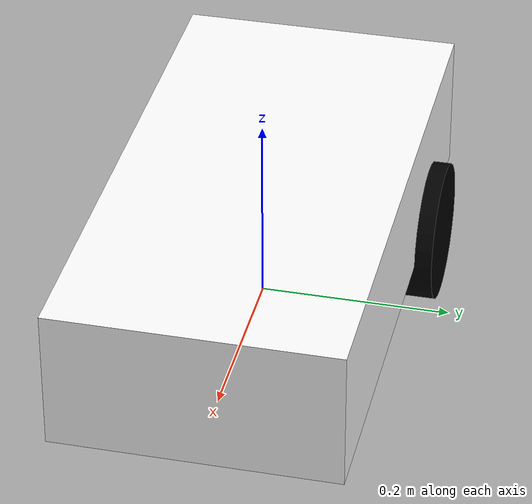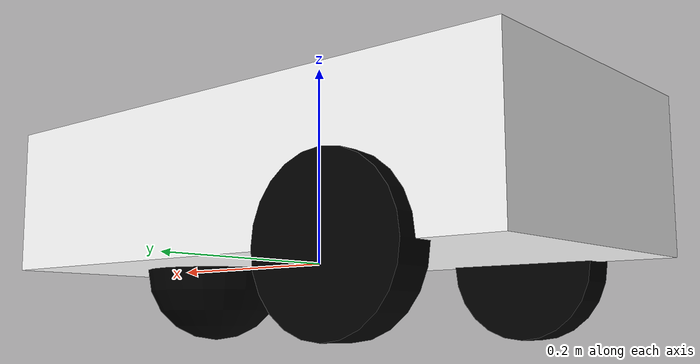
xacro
<?xml version="1.0"?>
<robot xmlns:xacro="http://www.ros.org/wiki/xacro">

    <xacro:include filename="color.urdf.xacro" />
    <xacro:include filename="inertia.urdf.xacro" />

    <link name="base_link">
    </link>

    <joint name="base_footprint_joint" type="fixed">
        <parent link="base_link"/>
        <child link="base_footprint"/>
        <origin xyz="0 0 0" rpy="0 0 0"/>
    </joint>

    <link name="base_footprint">
    </link>

    <joint name="chassis_joint" type="fixed">
        <parent link="base_link" />
        <child link="chassis_link" />
        <origin xyz="-0.3 0 0" rpy="0 0 0" />
    </joint>

    <link name="chassis_link">
        <visual>
            <origin xyz="0.3 0 0.075" rpy="0 0 0" />
            <geometry>
                <box size="0.6 0.3 0.15" />
            </geometry>
            <material name="white" />
        </visual>
        <collision>
            <origin xyz="0.3 0 0.075" rpy="0 0 0" />
            <geometry>
                <box size="0.6 0.3 0.15" />
            </geometry>
        </collision>
        <xacro:inertial_box mass="10.0" x="0.6" y="0.3" z="0.15">
            <origin xyz="0.3 0 0.075" rpy="0 0 0" />
        </xacro:inertial_box>
    </link>

    <gazebo reference="chassis_link">
        <material>Gazebo/White</material>
    </gazebo>

    <joint name="left_rear_wheel_joint" type="continuous">
        <parent link="chassis_link" />
        <child link="left_rear_wheel_link" />
        <origin xyz="0.15 0.15 0" rpy="-${pi/2} 0 0" />
        <axis xyz="0 0 1" />
    </joint>

    <link name="left_rear_wheel_link">
        <visual>
            <origin xyz="0 0 0" rpy="0 0 0" />
            <geometry>
                <cylinder radius="0.075" length="0.0375" />
            </geometry>
            <material name="black" />
        </visual>
        <collision>
            <origin xyz="0 0 0" rpy="0 0 0" />
            <geometry>
                <cylinder radius="0.075" length="0.0375" />
            </geometry>
        </collision>
        <xacro:inertial_cylinder mass="1.0" radius="0.075" length="0.0375">
            <origin xyz="0 0 0" rpy="0 0 0" />
        </xacro:inertial_cylinder>
    </link>

    <gazebo reference="left_rear_wheel_link">
        <material>Gazebo/Black</material>
    </gazebo>

    <joint name="right_rear_wheel_joint" type="continuous">
        <parent link="chassis_link" />
        <child link="right_rear_wheel_link" />
        <origin xyz="0.15 -0.15 0" rpy="-${pi/2} 0 0" />
        <axis xyz="0 0 1" />
    </joint>

    <link name="right_rear_wheel_link">
        <visual>
            <origin xyz="0 0 0" rpy="0 0 0" />
            <geometry>
                <cylinder radius="0.075" length="0.0375" />
            </geometry>
            <material name="black" />
        </visual>
        <collision>
            <origin xyz="0 0 0" rpy="0 0 0" />
            <geometry>
                <cylinder radius="0.075" length="0.0375" />
            </geometry>
        </collision>
        <xacro:inertial_cylinder mass="1.0" radius="0.075" length="0.0375">
            <origin xyz="0 0 0" rpy="0 0 0" />
        </xacro:inertial_cylinder>
    </link>

    <gazebo reference="right_rear_wheel_link">
        <material>Gazebo/Black</material>
    </gazebo>

    <joint name="front_caster_joint" type="fixed">
        <parent link="chassis_link" />
        <child link="front_caster_link" />
        <origin xyz="0.45 0 0" rpy="0 0 0" />
    </joint>
    <link name="front_caster_link">
        <visual>
            <origin xyz="0 0 0" rpy="0 0 0" />
            <geometry>
                <sphere radius="0.075" />
            </geometry>
            <material name="black" />
        </visual>
        <collision>
            <origin xyz="0 0 0" rpy="0 0 0" />
            <geometry>
                <sphere radius="0.075" />
            </geometry>
        </collision>
        <xacro:inertial_sphere mass="0.5" radius="0.075">
            <origin xyz="0 0 0" rpy="0 0 0" />
        </xacro:inertial_sphere>
    </link>
    <gazebo reference="front_caster_link">
        <material>Gazebo/Black</material>
        <mu1 value="0.001" />
        <mu2 value="0.001" />
    </gazebo>

</robot>

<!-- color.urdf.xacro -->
<robot xmlns:xacro="http://www.ros.org/wiki/xacro">

    <material name="red">
        <color rgba="1 0 0 1" />
    </material>

    <material name="orange">
        <color rgba="1 0.5 0 1" />
    </material>

    <material name="yellow">
        <color rgba="1 1 0 1" />
    </material>

    <material name="green">
        <color rgba="0 1 0 1" />
    </material>

    <material name="blue">
        <color rgba="0 0 1 1" />
    </material>

    <material name="indigo">
        <color rgba="0.5 0 1 1" />
    </material>

    <material name="violet">
        <color rgba="0.5 0 0.5 1" />
    </material>

    <material name="white">
        <color rgba="1 1 1 1" />
    </material>

    <material name="light_gray">
        <color rgba="0.75 0.75 0.75 1" />
    </material>

    <material name="gray">
        <color rgba="0.5 0.5 0.5 1" />
    </material>

    <material name="dark_gray">
        <color rgba="0.25 0.25 0.25 1" />
    </material>

    <material name="black">
        <color rgba="0 0 0 1" />
    </material>

    <material name="gold">
        <color rgba="1 0.84 0 1" />
    </material>

    <material name="silver">
        <color rgba="0.75 0.75 0.75 1" />
    </material>

    <material name="bronze">
        <color rgba="0.8 0.5 0.2 1" />
    </material>

    <material name="aqua">
        <color rgba="0 1 1 1" />
    </material>

    <material name="beige">
        <color rgba="0.96 0.96 0.86 1" />
    </material>

    <material name="brown">
        <color rgba="0.6 0.4 0.2 1" />
    </material>

    <material name="coral">
        <color rgba="1 0.5 0.31 1" />
    </material>

    <material name="crimson">
        <color rgba="0.86 0.08 0.24 1" />
    </material>

    <material name="cyan">
        <color rgba="0 1 1 1" />
    </material>

    <material name="forest_green">
        <color rgba="0.13 0.55 0.13 1" />
    </material>

    <material name="khaki">
        <color rgba="0.94 0.9 0.55 1" />
    </material>

    <material name="lavender">
        <color rgba="0.9 0.9 0.98 1" />
    </material>

    <material name="lime">
        <color rgba="0.5 1 0 1" />
    </material>

    <material name="magenta">
        <color rgba="1 0 1 1" />
    </material>

    <material name="maroon">
        <color rgba="0.5 0 0 1" />
    </material>

    <material name="navy">
        <color rgba="0 0 0.5 1" />
    </material>

    <material name="olive">
        <color rgba="0.5 0.5 0 1" />
    </material>

    <material name="pink">
        <color rgba="1 0.75 0.8 1" />
    </material>

    <material name="purple">
        <color rgba="0.5 0 0.5 1" />
    </material>

    <material name="royal_blue">
        <color rgba="0.25 0.41 0.88 1" />
    </material>

    <material name="slate_gray">
        <color rgba="0.44 0.5 0.56 1" />
    </material>

    <material name="teal">
        <color rgba="0 0.5 0.5 1" />
    </material>

    <material name="turquoise">
        <color rgba="0.25 0.88 0.82 1" />
    </material>

</robot>
